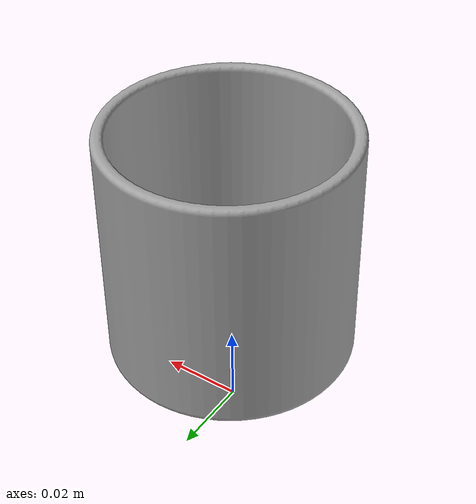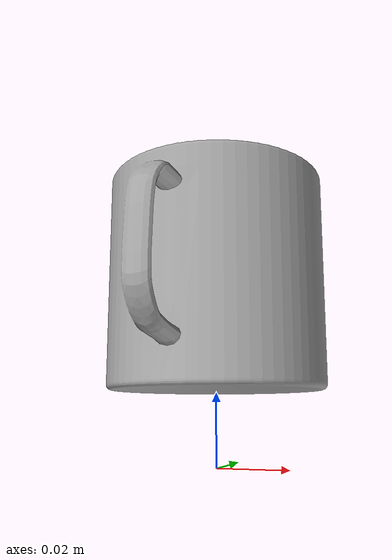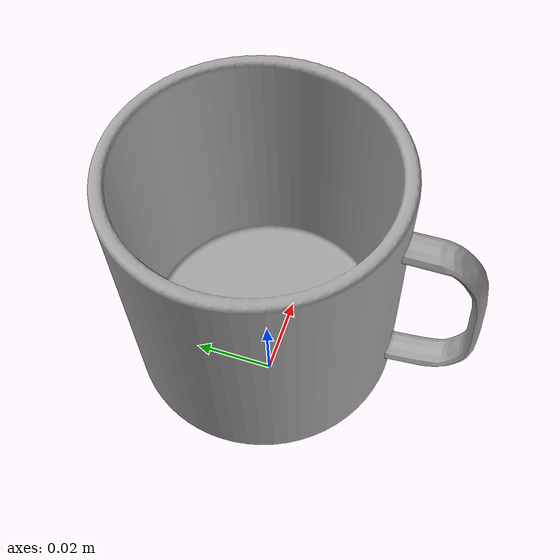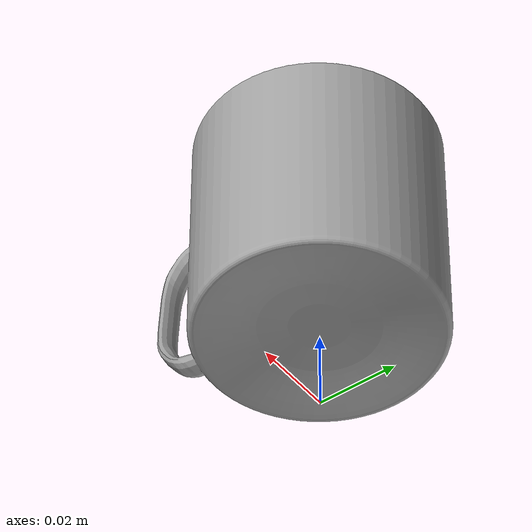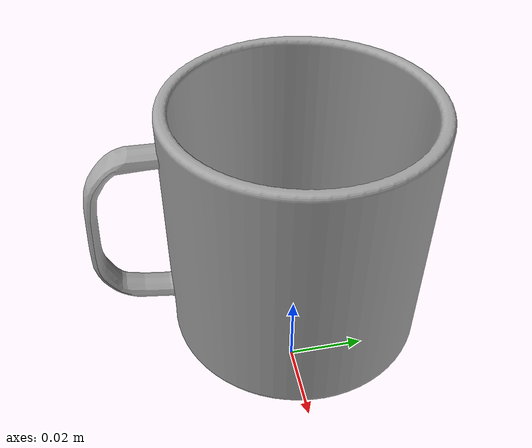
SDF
<?xml version="1.0"?>

<sdf version="1.4">
    <model name="mug">
        <static>true</static>
        <link name="mug_link">

            <visual name="mug_mesh">
                <geometry>
                    <mesh>
                        <uri>model://mug/meshes/model.dae</uri>
                    </mesh>
                </geometry>
            </visual>

            <collision name="mug_collison">
                <geometry>
                    <box>
                        <size>1 1 1</size>
                    </box>
                </geometry>
            </collision>

        </link>
    </model>
</sdf>
